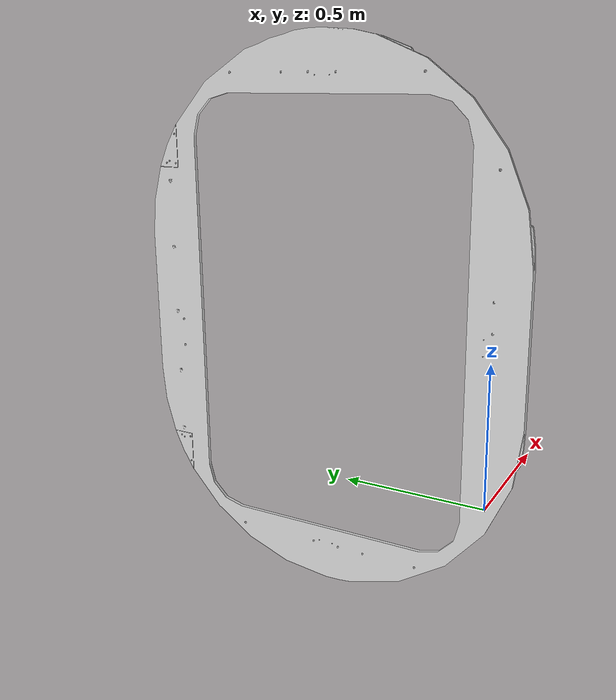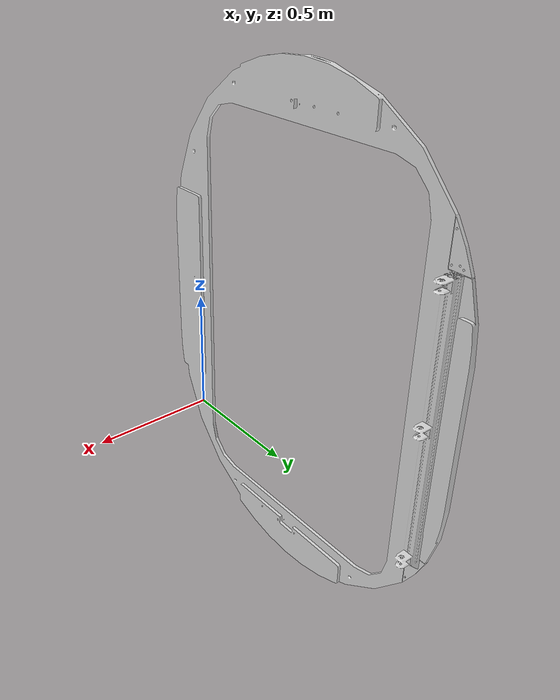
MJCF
<mujoco model="hatch_4060_frame">
  <default>
    <default class="visual">
      <geom group="2" type="mesh" contype="0" conaffinity="0"/>
    </default>
    <default class="collision">
      <geom group="3" type="mesh"/>
    </default>
  </default>
  <asset>
    <material name="mtl_hatch_4060_frame" specular="0.20000000000000004" shininess="1.0" rgba="0.85098039 0.85098039 0.85098039 1.0"/>
    <mesh file="hatch_4060_frame.obj"/>
    <mesh file="hatch_4060_frame_collision_0.obj"/>
    <mesh file="hatch_4060_frame_collision_1.obj"/>
    <mesh file="hatch_4060_frame_collision_2.obj"/>
    <mesh file="hatch_4060_frame_collision_3.obj"/>
    <mesh file="hatch_4060_frame_collision_4.obj"/>
    <mesh file="hatch_4060_frame_collision_5.obj"/>
    <mesh file="hatch_4060_frame_collision_6.obj"/>
    <mesh file="hatch_4060_frame_collision_7.obj"/>
    <mesh file="hatch_4060_frame_collision_8.obj"/>
  </asset>
  <worldbody>
    <body name="hatch_4060_frame">
      <geom material="mtl_hatch_4060_frame" mesh="hatch_4060_frame" class="visual"/>
      <geom mesh="hatch_4060_frame_collision_0" rgba="0.753443967031105 0.27572140197881057 0.7302660317783868 1" class="collision"/>
      <geom mesh="hatch_4060_frame_collision_1" rgba="0.608477522656368 0.29822540864437874 0.5018301732234806 1" class="collision"/>
      <geom mesh="hatch_4060_frame_collision_2" rgba="0.6301518176046553 0.2687226715857267 0.2816313986254009 1" class="collision"/>
      <geom mesh="hatch_4060_frame_collision_3" rgba="0.7975673772266976 0.14072258816612793 0.28816831399086784 1" class="collision"/>
      <geom mesh="hatch_4060_frame_collision_4" rgba="0.7547705600308158 0.728442144030894 0.1330085546867974 1" class="collision"/>
      <geom mesh="hatch_4060_frame_collision_5" rgba="0.2855494031762247 0.3174493113264969 0.5776380193371845 1" class="collision"/>
      <geom mesh="hatch_4060_frame_collision_6" rgba="0.48998930288526465 0.18324101841602525 0.9285191236189658 1" class="collision"/>
      <geom mesh="hatch_4060_frame_collision_7" rgba="0.6172587628767384 0.8632778710514316 0.6520552862759277 1" class="collision"/>
      <geom mesh="hatch_4060_frame_collision_8" rgba="0.5409054873278653 0.14898656521218956 0.7946899614685137 1" class="collision"/>
    </body>
  </worldbody>
</mujoco>
